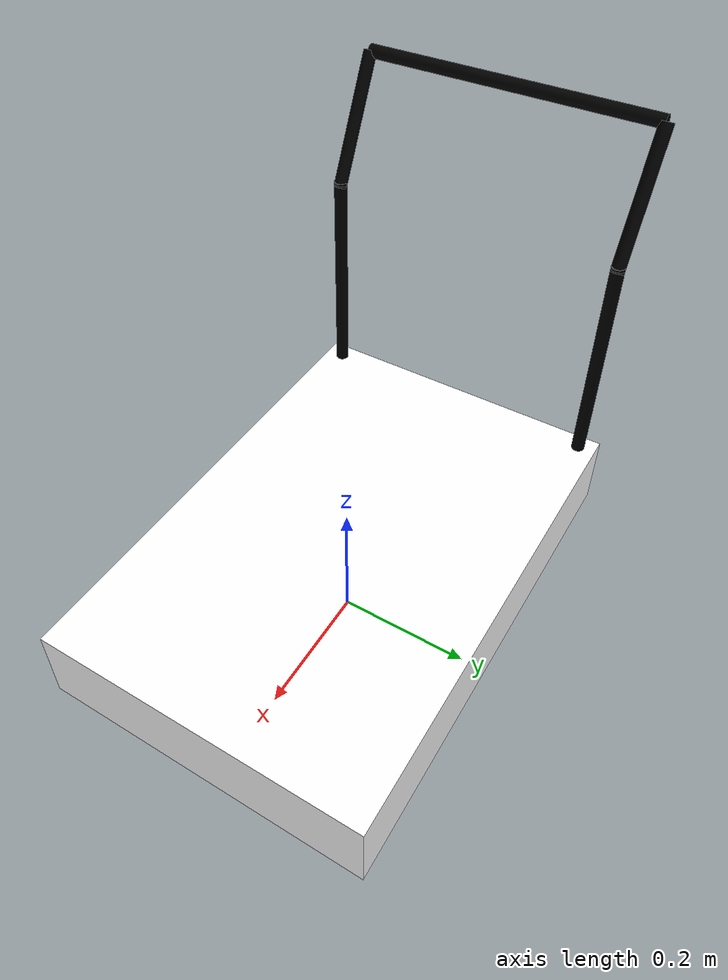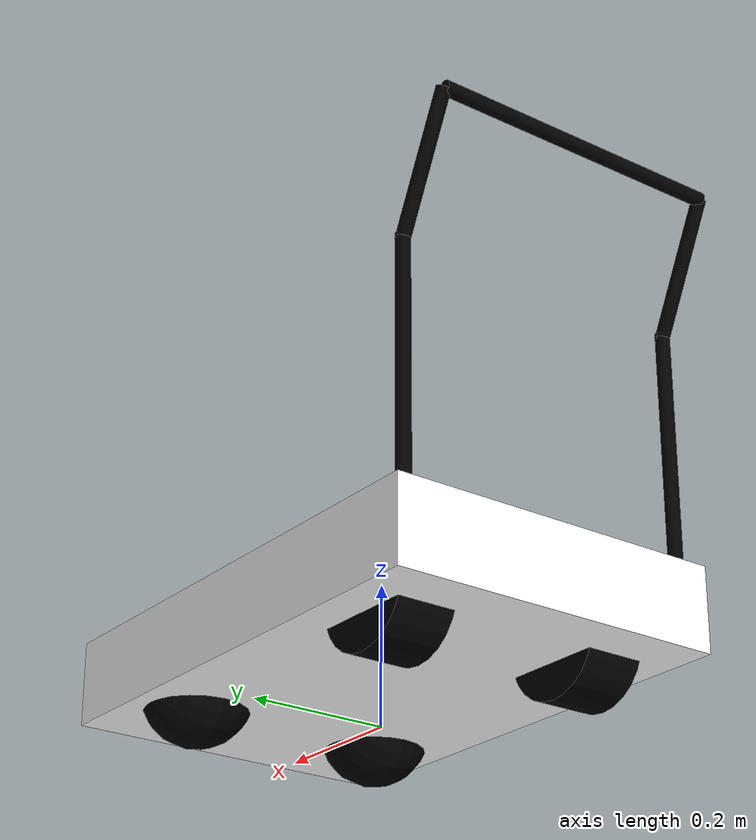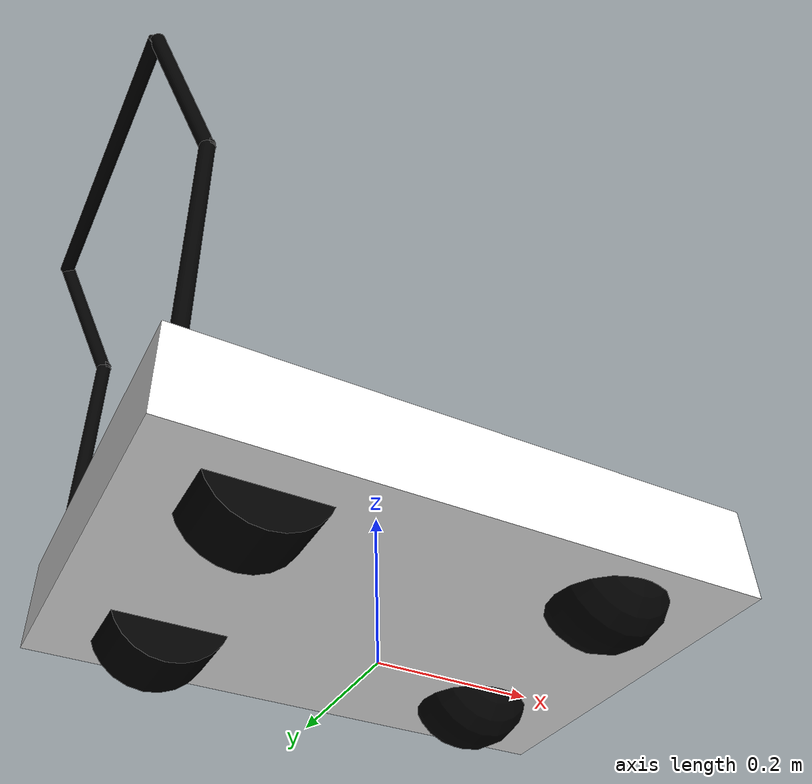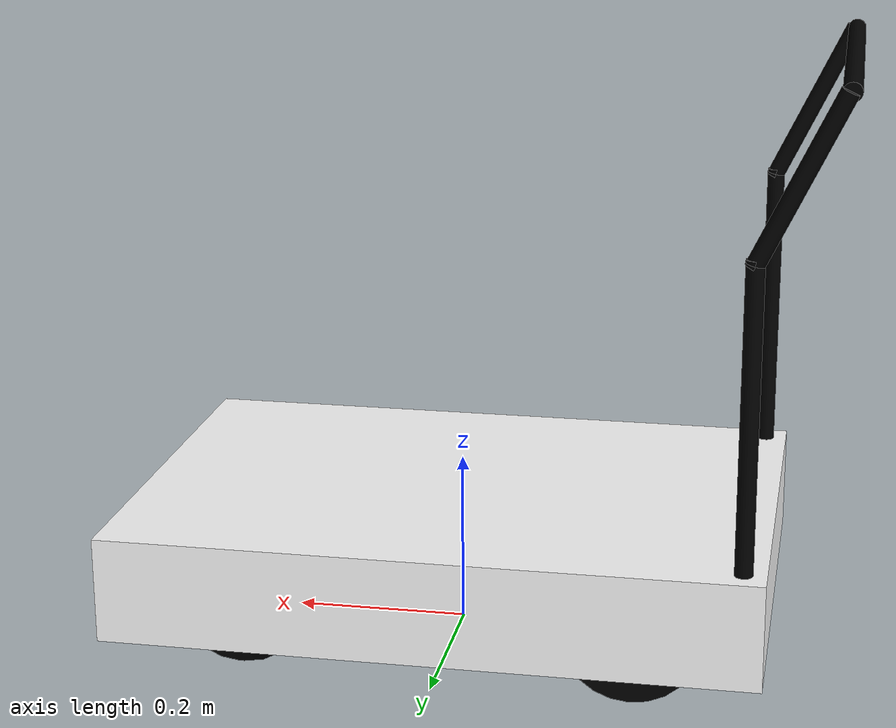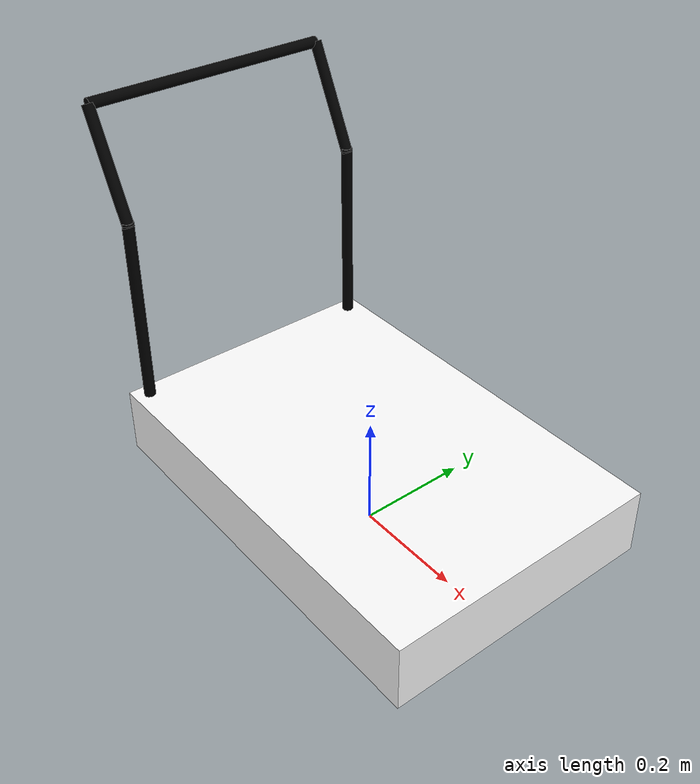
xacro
<?xml version="1.0"?>
<robot name="robot" xmlns:xacro="http://ros.org/wiki/xacro">
	<!-- General Macro -->
	<xacro:include filename="$(find config_robot)/urdf/lib/common.urdf.xacro" />
	<!-- Wheel Macro -->
	<xacro:include filename="$(find config_robot)/urdf/lib/wheel/wheel.urdf.xacro" />
	<xacro:include filename="$(find config_robot)/urdf/lib/wheel/swivel_caster.urdf.xacro" />

	<!-- PROPERTY LIST -->
	<!--All units in m-kg-s-radians unit system -->
	<xacro:property name="M_PI_2" value="${pi/2.0}" />

	<!-- AGV Base -->
	<xacro:property name="agv_base_height" value="0.12" />
	<xacro:property name="agv_base_lift" value="0.05" />
	<xacro:property name="agv_base_width" value="0.495" />
	<xacro:property name="agv_base_length" value="0.73" />
	<xacro:property name="agv_base_mass" value="40" />
	<xacro:property name="agv_wheel_height" value="0.07825" />

	<!-- BASE-FOOTPRINT -->
	<!-- base_footprint is a fictitious link(frame) that is on the ground right below base_link origin -->
	<link name="base_footprint">

	</link>

	<!-- AGV_BASE_LINK -->
	<joint name="agv_base_joint" type="fixed">
		<origin xyz="0 0 ${agv_base_height/2+agv_base_lift}" rpy="0 0 0" />
		<parent link="base_footprint"/>
		<child link="agv_base_link" />
	</joint>

	<link name="agv_base_link">
		<!-- body -->
		<xacro:inertia_cuboid mass="${agv_base_mass}" d="${agv_base_length}" w="${agv_base_width}"
													h="${agv_base_height}" xyz="0 0 ${-agv_base_height/2-agv_base_lift}" />
		<xacro:collision_cuboid length="${agv_base_length}" width="${agv_base_width}" height="${agv_base_height}" />
		<xacro:visual_cuboid length="${agv_base_length}" width="${agv_base_width}" height="${agv_base_height}" material="White" />

		<!-- handle -->
		<xacro:property name="x" value="0.34"/>
		<xacro:property name="y" value="0.22"/>
		<xacro:property name="radius" value="0.01"/>
		<xacro:property name="base_length" value="0.4"/>
		<xacro:property name="upper_length" value="0.2"/>
		<xacro:property name="handle_length" value="${2*y}"/>
		<xacro:property name="upper_angle" value="${pi/7}"/>

		<!-- handle left_base -->
		<xacro:property name="left_base_xyz" value="-${x} ${y} ${base_length/2}"/>
		<xacro:property name="left_base_rpy" value="0.0 0.0 0.0"/>
		<xacro:inertia_cylinder	mass="0.02" radius="${radius}" length="${base_length}" xyz="${left_base_xyz}" rpy="${left_base_rpy}"/>
		<xacro:collision_cylinder radius="${radius}" length="${base_length}" xyz="${left_base_xyz}" rpy="${left_base_rpy}"/>
		<xacro:visual_cylinder radius="${radius}" length="${base_length}" xyz="${left_base_xyz}" rpy="${left_base_rpy}" />

		<!-- handle right_base -->
		<xacro:property name="right_base_xyz" value="-${x} -${y} ${base_length/2}"/>
		<xacro:property name="right_base_rpy" value="0.0 0.0 0.0"/>
		<xacro:inertia_cylinder	mass="0.02" radius="${radius}" length="${base_length}" xyz="${right_base_xyz}" rpy="${right_base_rpy}"/>
		<xacro:collision_cylinder radius="${radius}" length="${base_length}" xyz="${right_base_xyz}" rpy="${right_base_rpy}"/>
		<xacro:visual_cylinder radius="${radius}" length="${base_length}" xyz="${right_base_xyz}" rpy="${right_base_rpy}" />

		<!-- handle left_upper -->
		<xacro:property name="left_upper_xyz"	value="-${x + upper_length*0.48*sin(upper_angle)} ${y}
																					${base_length + upper_length*0.45*cos(upper_angle)}"/>
		<xacro:property name="left_upper_rpy" value="0.0 -${upper_angle} 0.0"/>
		<xacro:inertia_cylinder	mass="0.02" radius="${radius}" length="${upper_length}" xyz="${left_upper_xyz}" rpy="${left_upper_rpy}"/>
		<xacro:collision_cylinder radius="${radius}" length="${upper_length}" xyz="${left_upper_xyz}" rpy="${left_upper_rpy}"/>
		<xacro:visual_cylinder radius="${radius}" length="${upper_length}" xyz="${left_upper_xyz}" rpy="${left_upper_rpy}" />

		<!-- handle right_upper -->
		<xacro:property name="right_upper_xyz"	value="-${x + upper_length*0.48*sin(upper_angle)} -${y}
																						${base_length + upper_length*0.45*cos(upper_angle)}"/>
		<xacro:property name="right_upper_rpy" value="0.0 -${upper_angle} 0.0"/>
		<xacro:inertia_cylinder	mass="0.02" radius="${radius}" length="${upper_length}" xyz="${right_upper_xyz}" rpy="${right_upper_rpy}"/>
		<xacro:collision_cylinder radius="${radius}" length="${upper_length}" xyz="${right_upper_xyz}" rpy="${right_upper_rpy}"/>
		<xacro:visual_cylinder radius="${radius}" length="${upper_length}" xyz="${right_upper_xyz}" rpy="${right_upper_rpy}" />

		<!-- handle handle -->
		<xacro:property name="handle_xyz"	value="-${x + upper_length*sin(upper_angle)} 0.0
																			${base_length + upper_length*cos(upper_angle) - radius}"/>
		<xacro:property name="handle_rpy" value="${pi/2} 0.0 0.0"/>
		<xacro:inertia_cylinder	mass="0.02" radius="${radius}" length="${handle_length}" xyz="${handle_xyz}" rpy="${handle_rpy}"/>
		<xacro:collision_cylinder radius="${radius}" length="${handle_length}" xyz="${handle_xyz}" rpy="${handle_rpy}"/>
		<xacro:visual_cylinder radius="${radius}" length="${handle_length}" xyz="${handle_xyz}" rpy="${handle_rpy}" />
	</link>

	<!-- WHEEL_CENTER_LINK -->
	<joint name="wheel_center_joint" type="fixed">
		<origin xyz="-0.22 0 0" rpy="0 0 0" />
		<parent link="base_footprint"/>
		<child link="wheel_center_link" />
	</joint>

	<link name="wheel_center_link"/>

	<!-- WHEELS -->
	<xacro:wheel	name="wheel_left" parent="agv_base_link"
													xyz="-0.22 0.15 ${-agv_base_height/2-agv_base_lift + agv_wheel_height}" rpy="${M_PI_2} 0 0" damping="0.0" />
	<xacro:wheel	name="wheel_right" parent="agv_base_link"
													xyz="-0.22 -0.15 ${-agv_base_height/2-agv_base_lift + agv_wheel_height}" rpy="${-M_PI_2} 0 0" damping="0.0" />
	<xacro:swivel_caster	name="swivel_caster_left" parent="agv_base_link"
													xyz="0.22 0.15 ${-agv_base_height/2-agv_base_lift + agv_wheel_height}" rpy="${M_PI_2} 0 0" damping="0.0" />
	<xacro:swivel_caster	name="swivel_caster_right" parent="agv_base_link"
													xyz="0.22 -0.15 ${-agv_base_height/2-agv_base_lift + agv_wheel_height}" rpy="${-M_PI_2} 0 0" damping="0.0" />

<gazebo reference="base_footprint">
    <material>Gazebo/DarkGrey</material>
</gazebo>

<gazebo>
  <plugin name="differential_drive_controller" filename="libgazebo_ros_diff_drive.so">
      <commandTopic>cmd_vel</commandTopic>
      <odometryTopic>odom</odometryTopic>
      <odometryFrame>odom</odometryFrame>
      <odometrySource>world</odometrySource>
      <publishOdomTF>true</publishOdomTF>
      <robotBaseFrame>base_footprint</robotBaseFrame>
      <publishWheelTF>false</publishWheelTF>
      <publishTf>true</publishTf>
      <publishWheelJointState>true</publishWheelJointState>
      <legacyMode>false</legacyMode>
      <updateRate>30</updateRate>
      <leftJoint>wheel_left_joint</leftJoint>
      <rightJoint>wheel_right_joint</rightJoint>
      <wheelSeparation>0.3</wheelSeparation>
      <wheelDiameter>0.1565</wheelDiameter>
      <wheelAcceleration>1</wheelAcceleration>
      <wheelTorque>10</wheelTorque>
      <rosDebugLevel>na</rosDebugLevel>
  </plugin>
</gazebo>

 <gazebo reference="agv_base_link">
    <gravity>true</gravity>
    <sensor name="imu_sensor" type="imu">
      <always_on>true</always_on>
      <update_rate>500</update_rate>
      <visualize>true</visualize>
      <topic>__default_topic__</topic>
      <plugin filename="libgazebo_ros_imu_sensor.so" name="imu_plugin">
        <topicName>imu</topicName>
        <bodyName>imu_link</bodyName>
        <updateRateHZ>100.0</updateRateHZ>
        <gaussianNoise>0.0</gaussianNoise>
        <xyzOffset>0 0 0</xyzOffset>
        <rpyOffset>0 0 0</rpyOffset>
        <frameName>imu_link</frameName>
        <initialOrientationAsReference>false</initialOrientationAsReference>
      </plugin>
      <pose>0 0 0 0 0 0</pose>
    </sensor>
  </gazebo>

  <gazebo reference="wheel_left_link">
    <mu1>0.1</mu1>
    <mu2>0.1</mu2>
    <kp>500000.0</kp>
    <kd>10.0</kd>
    <minDepth>0.001</minDepth>
    <maxVel>0.1</maxVel>
    <fdir1>1 0 0</fdir1>
    <material>Gazebo/FlatBlack</material>
  </gazebo>

  <gazebo reference="wheel_right_link">
    <mu1>0.1</mu1>
    <mu2>0.1</mu2>
    <kp>500000.0</kp>
    <kd>10.0</kd>
    <minDepth>0.001</minDepth>
    <maxVel>0.1</maxVel>
    <fdir1>1 0 0</fdir1>
    <material>Gazebo/FlatBlack</material>
  </gazebo>

  <gazebo reference="swivel_caster_left">
    <mu1>0.1</mu1>
    <mu2>0.1</mu2>
    <kp>1000000.0</kp>
    <kd>100.0</kd>
    <minDepth>0.001</minDepth>
    <maxVel>1.0</maxVel>
    <material>Gazebo/FlatBlack</material>
  </gazebo>

  <gazebo reference="swivel_caster_right">
    <mu1>0.1</mu1>
    <mu2>0.1</mu2>
    <kp>1000000.0</kp>
    <kd>100.0</kd>
    <minDepth>0.001</minDepth>
    <maxVel>1.0</maxVel>
    <material>Gazebo/FlatBlack</material>
  </gazebo>

</robot>

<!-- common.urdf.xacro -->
<robot name="common" xmlns:xacro="http://ros.org/wiki/xacro">

	<material name="Black">
		<color rgba="0.0 0.0 0.0 1.0"/>
	</material>

	<material name="Red">
		<color rgba="0.8 0.0 0.0 1.0"/>
	</material>

	<material name="White">
		<color rgba="1.0 1.0 1.0 1.0"/>
	</material>

	<material name="Blue">
		<color rgba="0.0 0.0 0.8 1.0"/>
	</material>

  <!-- Macro for calculating inertia of cylinder -->
	<xacro:macro name="inertia_cylinder" params="mass radius length xyz:='0 0 0' rpy:='0 0 0'">
		<inertial>
			<origin xyz="${xyz}" rpy="${rpy}"/>
			<mass value="${mass}"/>
			<inertia	ixx="${mass*(3*radius*radius+length*length)/12}" ixy = "0" ixz = "0"
								iyy="${mass*(3*radius*radius+length*length)/12}" iyz = "0"
								izz="${mass*radius*radius/2}" />
		</inertial>
	</xacro:macro>

  <!-- Macro for calculating inertia of sphere -->
	<xacro:macro name="inertia_sphere" params="radius rho:=1000 xyz:='0 0 0' rpy:='0 0 0'">
		<xacro:property name="mass" value="${4/3*rho*pi*radius**3}"/>
		<inertial>
			<origin xyz="${xyz}" rpy="${rpy}"/>
			<mass value="${mass}"/>
			<inertia	ixx="${(2/5*mass)*(radius**2)}" ixy="0" ixz="0"
								iyy="${(2/5*mass)*(radius**2)}"  iyz="0"
								izz="${(2/5*mass)*(radius**2)}" />
		</inertial>
	</xacro:macro>

	<!-- Macro for calculating inertia of cube -->
	<xacro:macro name="inertia_cuboid" params="mass w d h xyz:='0 0 0' rpy:='0 0 0'">
	<inertial>
		<origin xyz="${xyz}" rpy="${rpy}"/>
		<mass value="${mass}"/>
		<inertia	ixx="${mass*(h*h+d*d)/12}" ixy = "0" ixz = "0"
							iyy="${mass*(w*w+d*d)/12}" iyz = "0"
							izz="${mass*(w*w+h*h)/12}" />
		</inertial>
	</xacro:macro>

	<xacro:macro name="collision_cylinder" params="radius length xyz:='0 0 0' rpy:='0 0 0'">
		<collision>
			<origin xyz="${xyz}" rpy="${rpy}"/>
			<geometry>
				<cylinder radius="${radius}" length="${length}" />
			</geometry>
		</collision>
	</xacro:macro>

	<xacro:macro name="collision_sphere" params="radius xyz:='0 0 0' rpy:='0 0 0'">
		<collision>
			<origin xyz="${xyz}" rpy="${rpy}"/>
			<geometry>
				<sphere radius="${radius}"/>
			</geometry>
		</collision>
	</xacro:macro>

	<xacro:macro name="collision_cuboid" params="length width height xyz:='0 0 0' rpy:='0 0 0'">
		<collision>
			<origin xyz="0 0 0" rpy="0 0 0" />
			<geometry>
				<box size="${length} ${width} ${height}" />
			</geometry>
		</collision>
	</xacro:macro>

	<xacro:macro name="visual_sphere" params="radius xyz:='0 0 0' rpy:='0 0 0' material:='Black'">
		<visual>
			<origin xyz="${xyz}" rpy="${rpy}"/>
			<geometry>
				<sphere radius="${radius}"/>
			</geometry>
			<material name="${material}" />
		</visual>
	</xacro:macro>

	<xacro:macro name="visual_cylinder" params="radius length xyz:='0 0 0' rpy:='0 0 0' material:='Black'">
		<visual>
			<origin xyz="${xyz}" rpy="${rpy}"/>
			<geometry>
				<cylinder radius="${radius}" length="${length}" />
			</geometry>
			<material name="${material}" />
		</visual>
	</xacro:macro>

	<xacro:macro name="visual_cuboid" params="length width height xyz:='0 0 0' rpy:='0 0 0' material:='Black'">
		<visual>
			<origin xyz="0 0 0" rpy="0 0 0" />
			<geometry>
				<box size="${length} ${width} ${height}" />
			</geometry>
			<material name="${material}" />
		</visual>
	</xacro:macro>
</robot>

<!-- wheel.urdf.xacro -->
<robot name="wheel" xmlns:xacro="http://ros.org/wiki/xacro">
	<xacro:macro name="wheel" params="name parent xyz:='0 0 0' rpy:='0 0 0' damping:=1000000.0">
		<xacro:property name="radius" value="0.07825"/>
		<xacro:property name="length" value="0.085"/>
		<xacro:property name="rho" value="1046.3516"/>
		<xacro:property name="mass" value="2.1"/>

		<joint name="${name}_joint" type="continuous">
			<axis xyz="0 0 1" />
			<origin xyz="${xyz}" rpy="${rpy}" />
			<parent link="${parent}" />
			<child link="${name}" />
			<dynamics damping="${damping}" friction="0.0" />
		</joint>

		<link name="${name}">
			<!-- Make the wheel has one point contact to the ground -->
			<xacro:inertia_sphere rho="${rho}" radius="${radius}" />
			<xacro:collision_sphere radius="${radius}" />
			<!-- Show as a cylinder -->
			<xacro:visual_cylinder radius="${radius}" length="${length}" />
		</link>
	</xacro:macro>
</robot>

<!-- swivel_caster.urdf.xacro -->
<robot name="swivel_caster" xmlns:xacro="http://ros.org/wiki/xacro">
	<xacro:macro name="swivel_caster" params="name parent xyz:='0 0 0' rpy:='0 0 0' damping:=1000000.0">
		<xacro:property name="radius" value="0.07825"/>
		<xacro:property name="rho" value="1046.3516"/>

		<joint name="${name}_joint" type="continuous">
			<axis xyz="0 0 1" />
			<origin xyz="${xyz}" rpy="${rpy}" />
			<parent link="${parent}" />
			<child link="${name}" />
			<dynamics damping="${damping}" friction="0.0" />
		</joint>

		<link name="${name}">
			<xacro:inertia_sphere rho="${rho}" radius="${radius}" />
			<xacro:collision_sphere radius="${radius}" />
			<xacro:visual_sphere radius="${radius}" />
		</link>
	</xacro:macro>
</robot>
